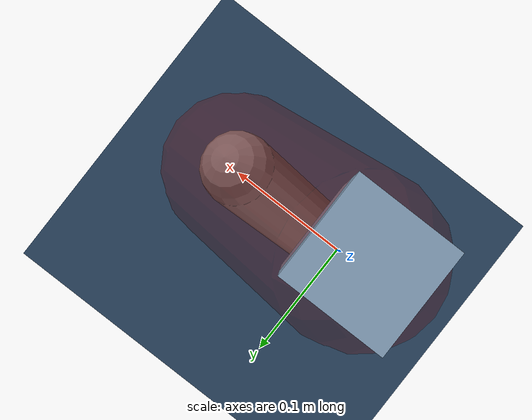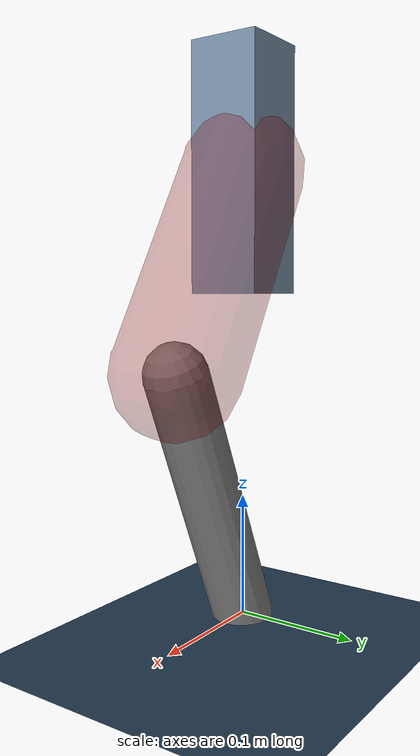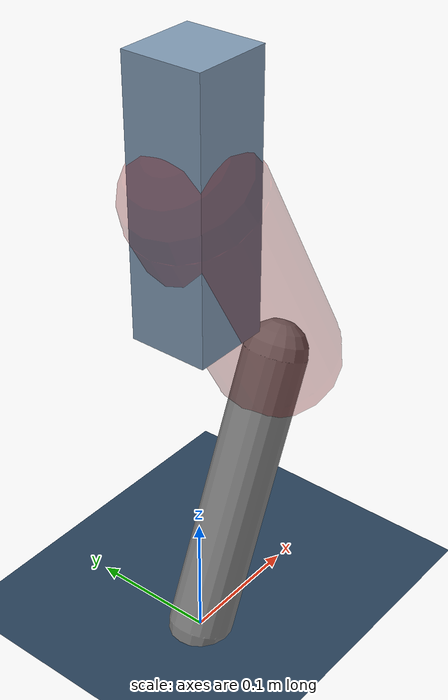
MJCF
<mujoco model="Hopper2D">
	<compiler inertiafromgeom="true" angle="radian" />
	<option timestep="0.001" integrator="implicit" cone="elliptic" solver="Newton" tolerance="1e-10" />

	<default>
		<geom contype="1" conaffinity="1" condim="3" friction="2 0.005 0.0001" solref="0.005 1" />
		<joint limited="true" damping="0.1" />
	</default>

	<asset>
		<texture name="skybox" type="skybox" builtin="gradient" rgb1=".4 .6 .8" rgb2="0 0 0" width="800" height="800" />
		<texture name="grid" type="2d" builtin="checker" rgb1=".1 .2 .3" rgb2=".2 .3 .4" width="300" height="300" mark="edge" markrgb=".2 .3 .4" />
		<material name="ground" texture="grid" texrepeat="1 1" texuniform="true" reflectance="0.1" />
		<material name="leg" rgba="0.5 0.6 0.7 1" />
	</asset>

	<worldbody>

		<geom name="floor" type="plane" size="5 5 0.25" material="ground" />

		<light directional="false" diffuse="0.8 0.8 0.8" specular="0.3 0.3 0.3" pos="0 0 2" dir="0 0 -1" />
		<light mode="targetbodycom" target="base" directional="false" diffuse="0.8 0.8 0.8" specular="0.3 0.3 0.3" pos="0 0 2" dir="0 0 -1" />

		<camera name="fixed" pos="0 -2 1" xyaxes="1 0 0 0 0 1" />
		<camera name="tracking" mode="trackcom" pos="0 -3 1" />

		<body name="root" pos="0 0 0.3684275203705836">
			<joint name="slide_x" type="slide" axis="1 0 0" range="-100 100" />
			<joint name="slide_z" type="slide" axis="0 0 1" range="0 10" />

			<body name="base" pos="0 0 0">
				<geom name="torso" type="box" size="0.03 0.03 0.1" mass="3.484" material="leg" />

				<body name="link1" pos="0 0 0" euler="0 1.0583486545717093 0">
					<joint type="hinge" axis="0 -1 0" pos="0 0 0" name="hinge1" limited="true" range="-3.14 3.14" stiffness="0" damping="0.1" />
					<geom name="thigh" type="capsule" fromto="0 0 0 0.18298729422031093 0 0" size="0.05" rgba="0.5 0 0 0.3" mass="0.6877695061287462" />

					<body name="link2" pos="0.18298729422031093 0 0" euler="0 0.9180379013234247 0">
						<joint type="hinge" axis="0 -1 0" pos="0 0 0" name="hinge2" limited="true" range="-3.14 3.14" stiffness="0" damping="0.1" />
						<geom name="shank" type="capsule" fromto="0 0 0 0.22739404639340854 0 0" size="0.025" mass="0.42381523711472685" />

					</body>
				</body>
			</body>
		</body>
	</worldbody>

	<actuator>
		<motor name="torque1" joint="hinge1" ctrlrange="-163.146920701352 163.146920701352" ctrllimited="true" gear="1" />
		<motor name="torque2" joint="hinge2" ctrlrange="-34.48660758169108 34.48660758169108" ctrllimited="true" gear="1" />
	</actuator>
</mujoco>
